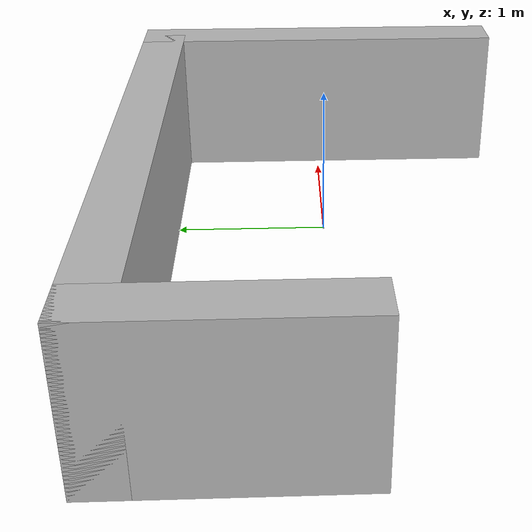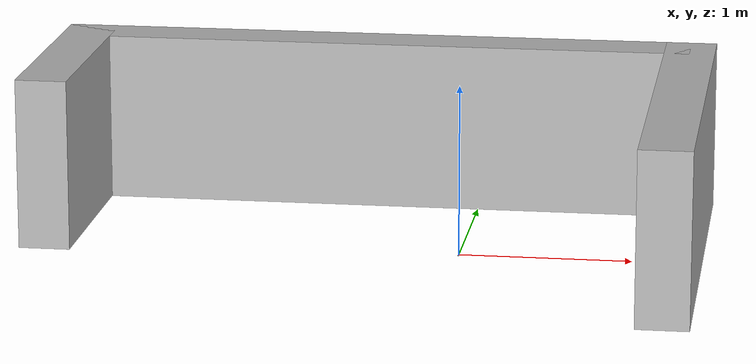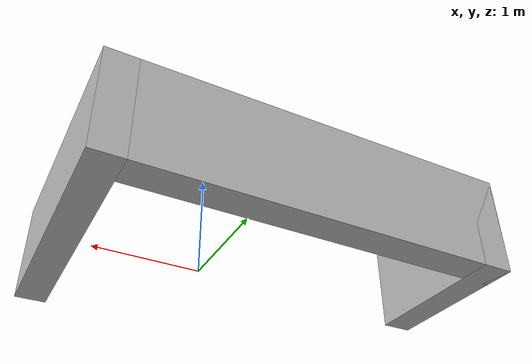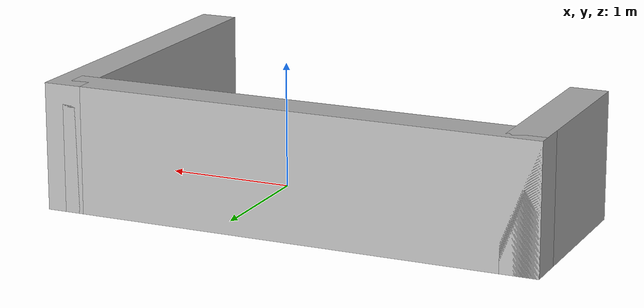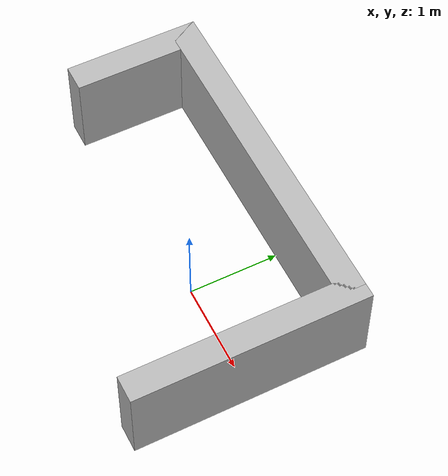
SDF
<?xml version="1.0"?>
<sdf version="1.10">
  <model name="harbour_reverse_stern_starboard">
    <static>true</static>
    <!-- A C-shaped berth. The bow faces +X and the only clear reverse arc
         moves the stern towards starboard (-Y). -->
    <link name="quay">
      <collision name="front_collision">
        <pose>1.25 0 0.5 0 0 0</pose>
        <geometry><box><size>0.30 2.60 1.0</size></box></geometry>
      </collision>
      <visual name="front_visual">
        <pose>1.25 0 0.5 0 0 0</pose>
        <geometry><box><size>0.30 2.60 1.0</size></box></geometry>
      </visual>
      <collision name="port_collision">
        <pose>-0.65 1.15 0.5 0 0 0</pose>
        <geometry><box><size>3.80 0.30 1.0</size></box></geometry>
      </collision>
      <visual name="port_visual">
        <pose>-0.65 1.15 0.5 0 0 0</pose>
        <geometry><box><size>3.80 0.30 1.0</size></box></geometry>
      </visual>
      <collision name="aft_collision">
        <pose>-2.40 0.55 0.5 0 0 0</pose>
        <geometry><box><size>0.30 1.50 1.0</size></box></geometry>
      </collision>
      <visual name="aft_visual">
        <pose>-2.40 0.55 0.5 0 0 0</pose>
        <geometry><box><size>0.30 1.50 1.0</size></box></geometry>
      </visual>
      <visual name="quay_material">
        <geometry><box><size>0.01 0.01 0.01</size></box></geometry>
        <material><diffuse>0.20 0.25 0.35 1</diffuse></material>
      </visual>
    </link>
  </model>
</sdf>
